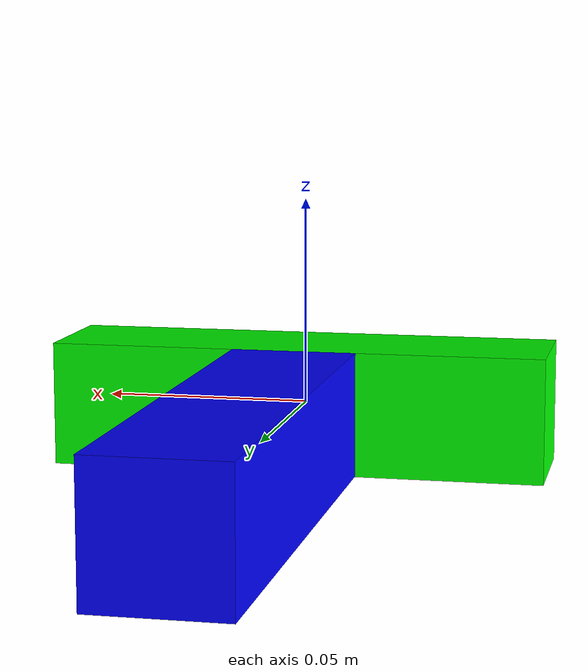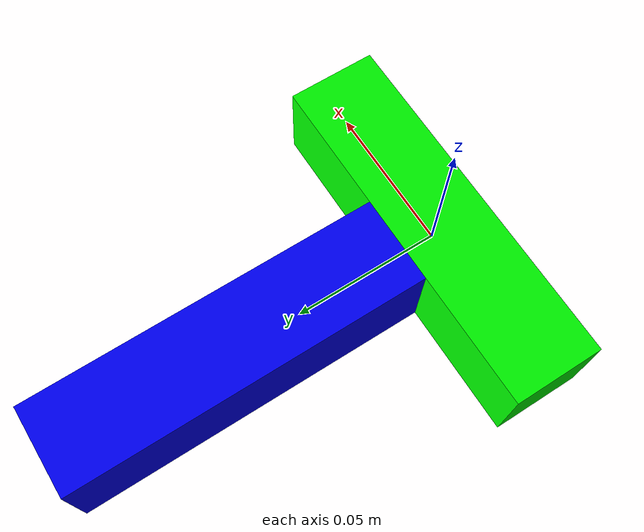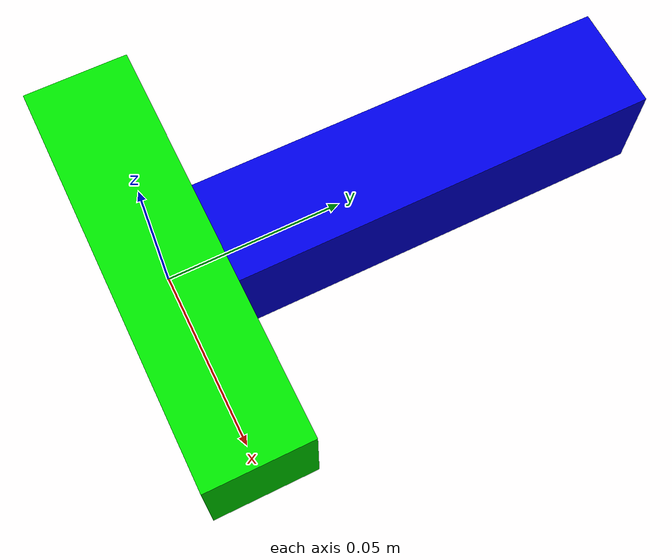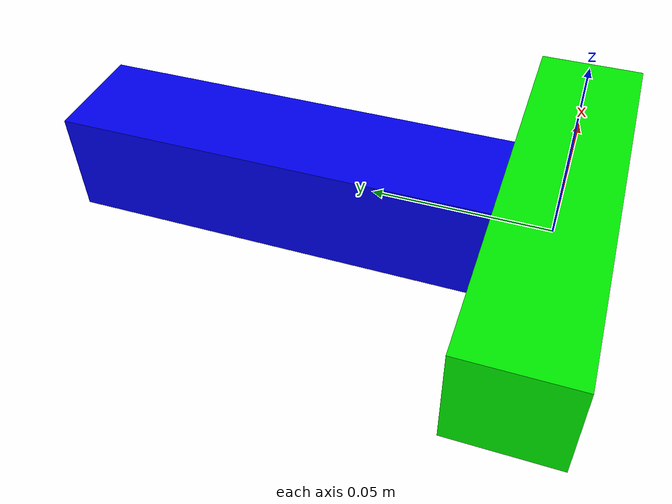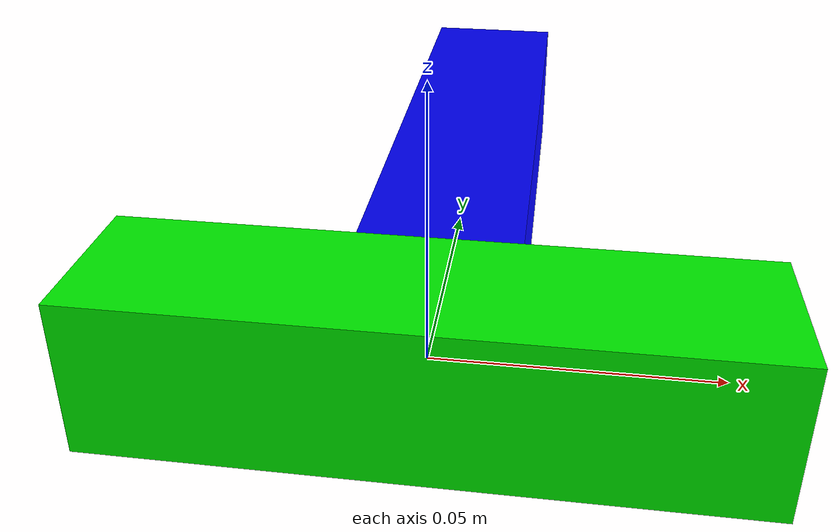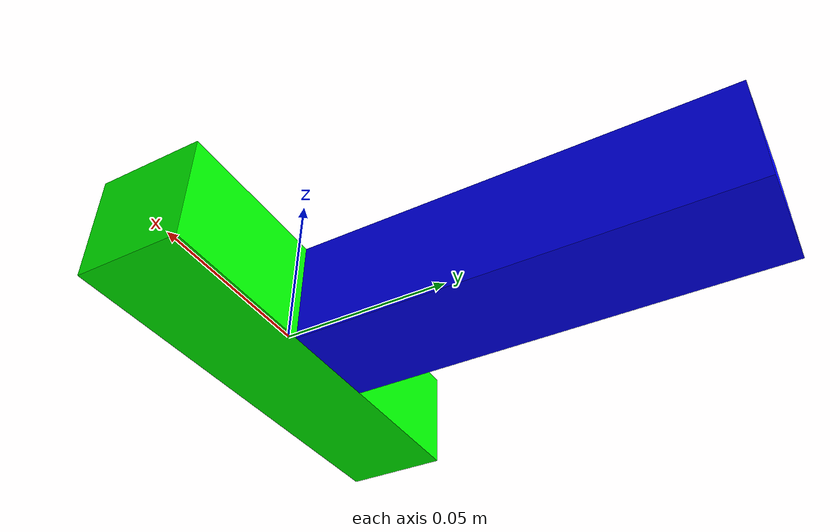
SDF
<?xml version="1.0"?>
<sdf version="1.7">
  <model name="t_shape">
    <link name="horizontal_link">
      <inertial>
        <pose>0 0 0 0 0 0</pose>
        <mass>0.5</mass>
        <!-- Inertia values were calculated to be consistent with the mass and
             geometry size, assuming a uniform density. -->
        <inertia>
            <ixx>0.00015</ixx>
            <iyy>0.001275</iyy>
            <izz>0.001275</izz>
            <ixy>0.0</ixy>
            <ixz>0.0</ixz>
            <iyz>0.0</iyz>
        </inertia>
      </inertial>

      <visual name="horizontal_link">
        <pose>0 0 0 0 0 0</pose>
        <geometry>
          <box>
            <size>0.12 0.03 0.03</size>
          </box>
        </geometry>
        <material>
          <diffuse>0 1 0 1</diffuse>
        </material>
      </visual>
      <collision name="horizontal_link_volume">
        <pose>0 0 0 0 0 0</pose>
            <geometry>
          <box>
            <size>0.12 0.03 0.03</size>
          </box>
        </geometry>
        <drake:proximity_properties>
          <drake:compliant_hydroelastic/>
          <drake:hydroelastic_modulus> 3.0e7 </drake:hydroelastic_modulus>
          <drake:mesh_resolution_hint> 0.18 </drake:mesh_resolution_hint>
          <drake:hunt_crossley_dissipation>10</drake:hunt_crossley_dissipation>
          <drake:mu_dynamic>0.3</drake:mu_dynamic>
        </drake:proximity_properties>
      </collision>
    </link>

    <link name="vertical_link">
      <inertial>
        <pose>0 0.075 0 0 0 1.5708</pose>
        <mass>0.5</mass>
        <!-- Inertia values were calculated to be consistent with the mass and
             geometry size, assuming a uniform density. -->
        <inertia>
            <ixx>0.001275</ixx>
            <iyy>0.00015</iyy>
            <izz>0.001275</izz>
            <ixy>0.0</ixy>
            <ixz>0.0</ixz>
            <iyz>0.0</iyz>
        </inertia>
      </inertial>

      <visual name="vertical_link">
        <pose>0 0.075 0 0 0 1.5708</pose>
        <geometry>
          <box>
            <size>0.12 0.03 0.03</size>
          </box>
        </geometry>
        <material>
          <diffuse>0 0 1 1</diffuse>
        </material>
      </visual>
      <collision name="vertical_link_volume">
        <pose>0 0.075 0 0 0 1.5708</pose>
            <geometry>
          <box>
            <size>0.12 0.03 0.03</size>
          </box>
        </geometry>
        <drake:proximity_properties>
          <drake:compliant_hydroelastic/>
          <drake:hydroelastic_modulus> 3.0e7 </drake:hydroelastic_modulus>
          <drake:mesh_resolution_hint> 0.18 </drake:mesh_resolution_hint>
          <drake:hunt_crossley_dissipation>10</drake:hunt_crossley_dissipation>
          <drake:mu_dynamic>0.3</drake:mu_dynamic>
        </drake:proximity_properties>
      </collision>
    </link>

    <joint name="fixed_joint" type="fixed">
      <!-- Parent and child links for the joint -->
      <parent>horizontal_link</parent>
      <child>vertical_link</child>
      <!-- Pose of the joint relative to the parent link -->
      <pose>0 0 0 0 0 0</pose>
    </joint>

  </model>
</sdf>
